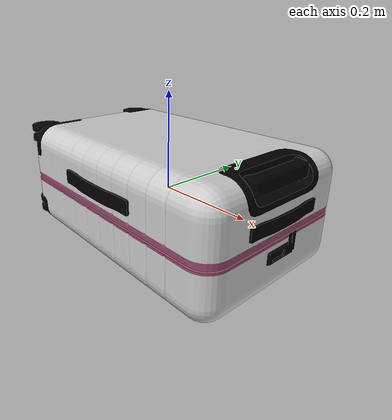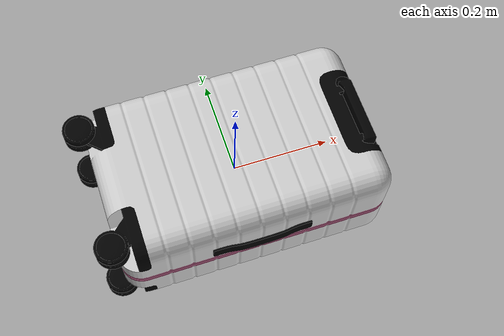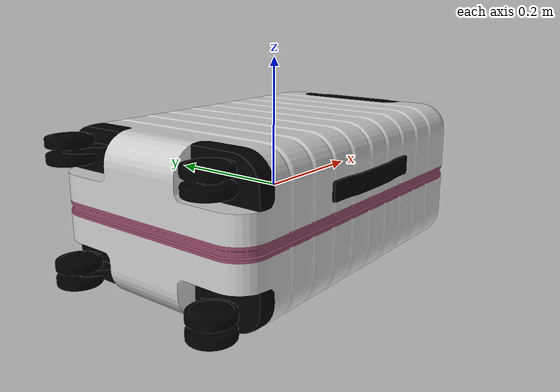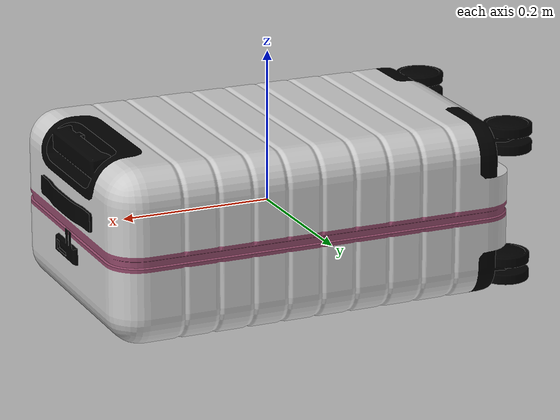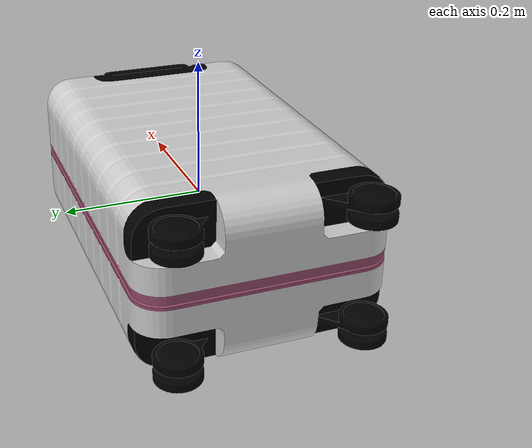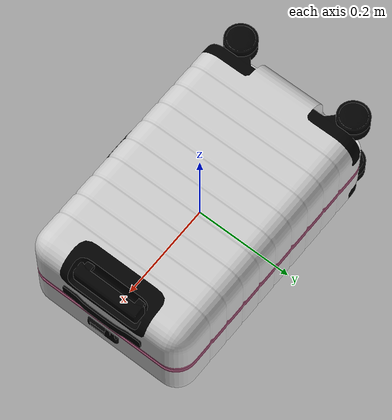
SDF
<?xml version="1.0" ?>
<sdf version="1.6">
  <model name="luggage">
    <static>false</static>
    <link name="link">
      <inertial>
        <mass>3.0</mass>
        <inertia>
          <ixx>0.05</ixx><ixy>0</ixy><ixz>0</ixz>
          <iyy>0.05</iyy><iyz>0</iyz><izz>0.05</izz>
        </inertia>
      </inertial>

      <visual name="visual">
        <geometry>
          <mesh>
            <uri>model://luggage/meshes/HandLuggage.dae</uri>
            <scale>1 1 1</scale>
          </mesh>
        </geometry>
      </visual>

      <collision name="collision">
        <geometry>
          <mesh>
            <uri>model://luggage/meshes/HandLuggage.dae</uri>
            <scale>1 1 1</scale>
          </mesh>
        </geometry>
      </collision>
    </link>
  </model>
</sdf>
